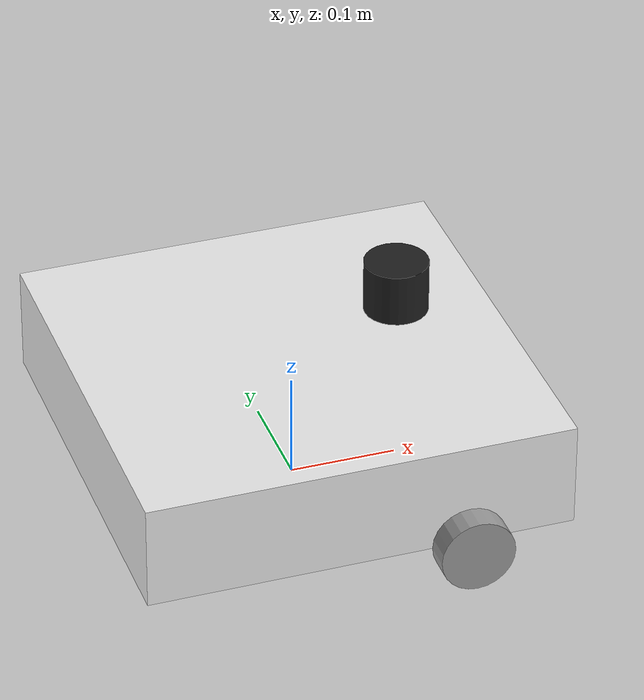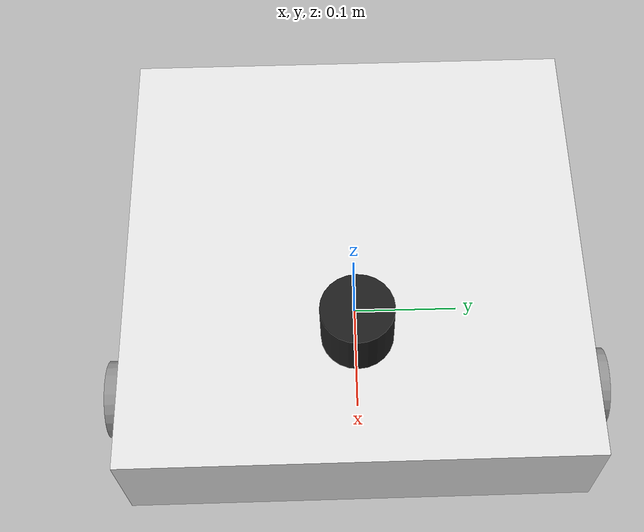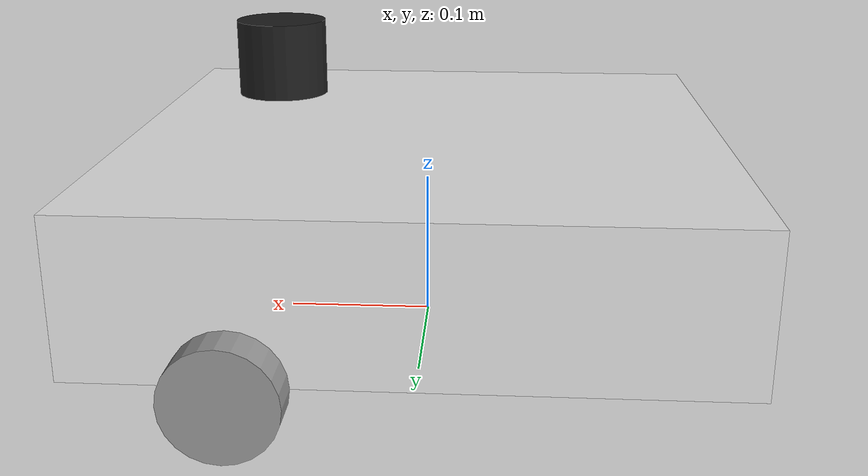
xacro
<?xml version="1.0"?>

<robot xmlns:xacro="http://www.ros.org/wiki/xacro">

    <!-- Robot Dimensions          -->

    <xacro:property name="base_length" value="0.4"/>
    <xacro:property name="base_width" value="0.4"/>
    <xacro:property name="base_height" value="0.1"/>

    <xacro:property name="wheel_radius" value="0.035"/>
    <xacro:property name="wheel_length" value="0.025"/>

    <xacro:property name="caster_radius" value="${wheel_radius / 2.0}"/>

    <!-- Base Footprint            -->

    <link name="base_footprint"/>

    <!-- Base Link                 -->

    <link name="base_link">

        <visual>
            <geometry>
                <box size="${base_length} ${base_width} ${base_height}"/>
            </geometry>

            <origin
                xyz="0 0 ${base_height / 2.0}"
                rpy="0 0 0"/>

            <material name="white"/>
        </visual>

        <collision>
            <geometry>
                <box size="${base_length} ${base_width} ${base_height}"/>
            </geometry>

            <origin
                xyz="0 0 ${base_height / 2.0}"
                rpy="0 0 0"/>
        </collision>

        <xacro:box_inertia
            m="5.0"
            l="${2*base_length}"
            w="${2*base_width}"
            h="${2*base_height}"
            xyz="0 0 ${base_height}"
            rpy="0 0 0"/>

    </link>

    <!-- Wheel Macro               -->

    <xacro:macro name="wheel_link" params="prefix">

        <link name="${prefix}_wheel_link">

            <visual>
                <geometry>
                    <cylinder
                        radius="${wheel_radius}"
                        length="${wheel_length}"/>
                </geometry>

                <origin
                    xyz="0 0 0"
                    rpy="${pi/2.0} 0 0"/>

                <material name="grey"/>
            </visual>

            <collision>
                <geometry>
                    <cylinder
                        radius="${wheel_radius}"
                        length="${wheel_length}"/>
                </geometry>

                <origin
                    xyz="0 0 0"
                    rpy="${pi/2.0} 0 0"/>
            </collision>

            <xacro:cylinder_inertia
                m="1.0"
                r="${2*wheel_radius}"
                h="${2*wheel_length}"
                xyz="0 0 0"
                rpy="${pi/2.0} 0 0"/>

        </link>

    </xacro:macro>

    <!-- Wheels                    -->

    <xacro:wheel_link prefix="left"/>
    <xacro:wheel_link prefix="right"/>

    <!-- Caster Wheel              -->

    <link name="caster_wheel_link">

        <visual>
            <geometry>
                <sphere radius="${caster_radius}"/>
            </geometry>

            <origin xyz="0 0 0" rpy="0 0 0"/>

            <material name="grey"/>
        </visual>

        <collision>
            <geometry>
                <sphere radius="${caster_radius}"/>
            </geometry>

            <origin xyz="0 0 0" rpy="0 0 0"/>
        </collision>

        <xacro:sphere_inertia
            m="0.5"
            r="${2*caster_radius}"
            xyz="0 0 0"
            rpy="0 0 0"/>

    </link>

    <!-- Base Joint                -->

    <joint name="base_joint" type="fixed">

        <parent link="base_footprint"/>
        <child link="base_link"/>

        <origin
            xyz="0 0 ${wheel_radius}"
            rpy="0 0 0"/>

    </joint>

    <!-- RIGHT WHEEL FRONT         -->

    <joint
        name="base_right_wheel_joint"
        type="continuous">

        <parent link="base_link"/>
        <child link="right_wheel_link"/>

        <origin
            xyz="${base_length / 4.0}
                 ${-((base_width / 2.0) + (wheel_length/2.0))}
                 0"
            rpy="0 0 0"/>

        <axis xyz="0 -1 0"/>

        <limit
            velocity="100"
            effort="100"/>

    </joint>

    <!-- LEFT WHEEL FRONT          -->

    <joint
        name="base_left_wheel_joint"
        type="continuous">

        <parent link="base_link"/>
        <child link="left_wheel_link"/>

        <origin
            xyz="${base_length / 4.0}
                 ${(base_width / 2.0) + (wheel_length/2.0)}
                 0"
            rpy="0 0 0"/>

        <axis xyz="0 -1 0"/>

        <limit
            velocity="100"
            effort="100"/>

    </joint>

    <!-- CASTER BACK               -->

    <joint
        name="base_caster_wheel_joint"
        type="fixed">

        <parent link="base_link"/>
        <child link="caster_wheel_link"/>

        <origin
            xyz="${-base_length / 3.0}
                 0
                 ${-caster_radius}"
            rpy="0 0 0"/>

    </joint>

    <!-- LIDAR LINK                -->

    <link name="laser">

        <visual>
            <geometry>
                <cylinder
                    radius="0.03"
                    length="0.05"/>
            </geometry>

            <origin
                xyz="0 0 0"
                rpy="0 0 0"/>

            <material name="black"/>
        </visual>

        <collision>
            <geometry>
                <cylinder
                    radius="0.03"
                    length="0.05"/>
            </geometry>

            <origin
                xyz="0 0 0"
                rpy="0 0 0"/>
        </collision>

        <inertial>

            <mass value="0.1"/>

            <origin
                xyz="0 0 0"
                rpy="0 0 0"/>

            <inertia
                ixx="0.0001"
                ixy="0.0"
                ixz="0.0"
                iyy="0.0001"
                iyz="0.0"
                izz="0.0001"/>

        </inertial>

    </link>

    <!-- LIDAR FRONT TOP           -->

    <joint
        name="laser_joint"
        type="fixed">

        <parent link="base_link"/>
        <child link="laser"/>

        <!-- Top of front wheel side -->
        <origin
            xyz="${base_length / 4.0}
                 0
                 ${base_height + 0.05}"
            rpy="0 0 0"/>

    </joint>

</robot>
